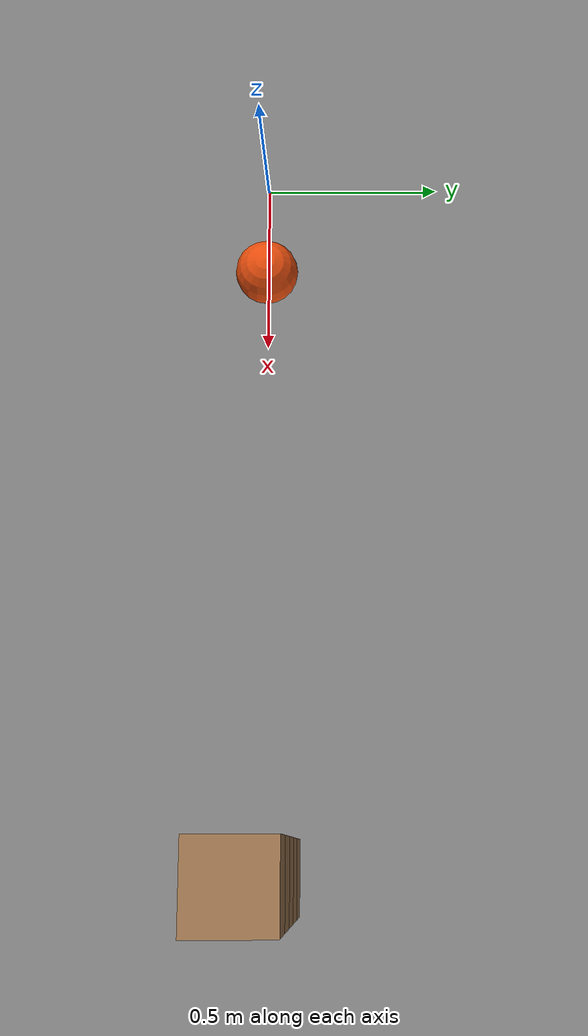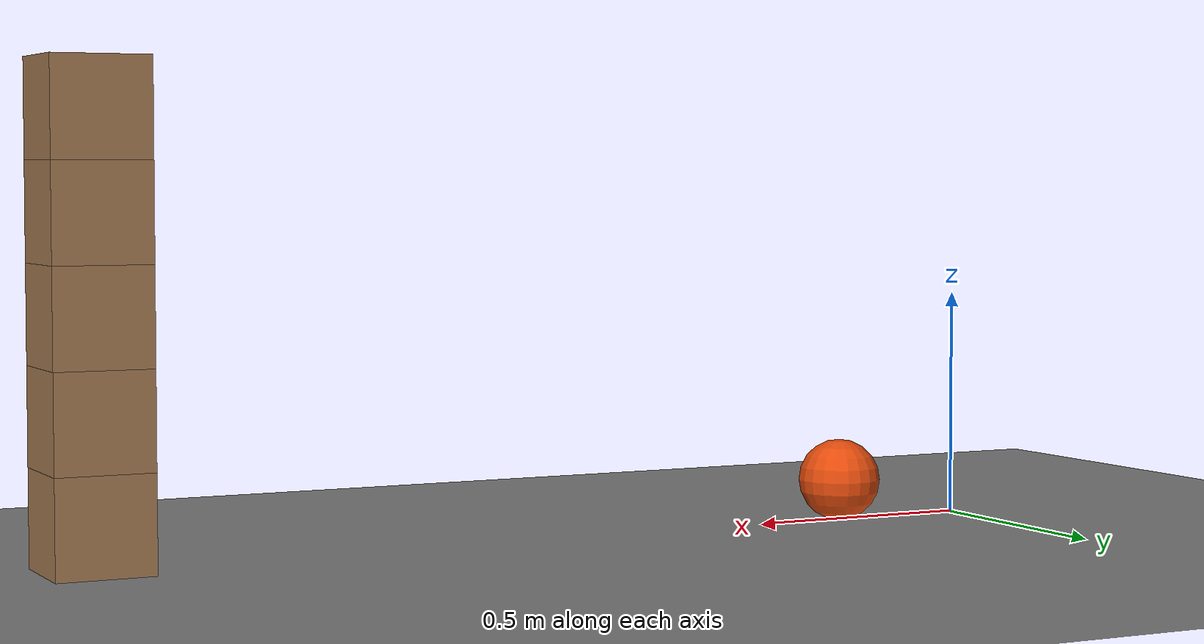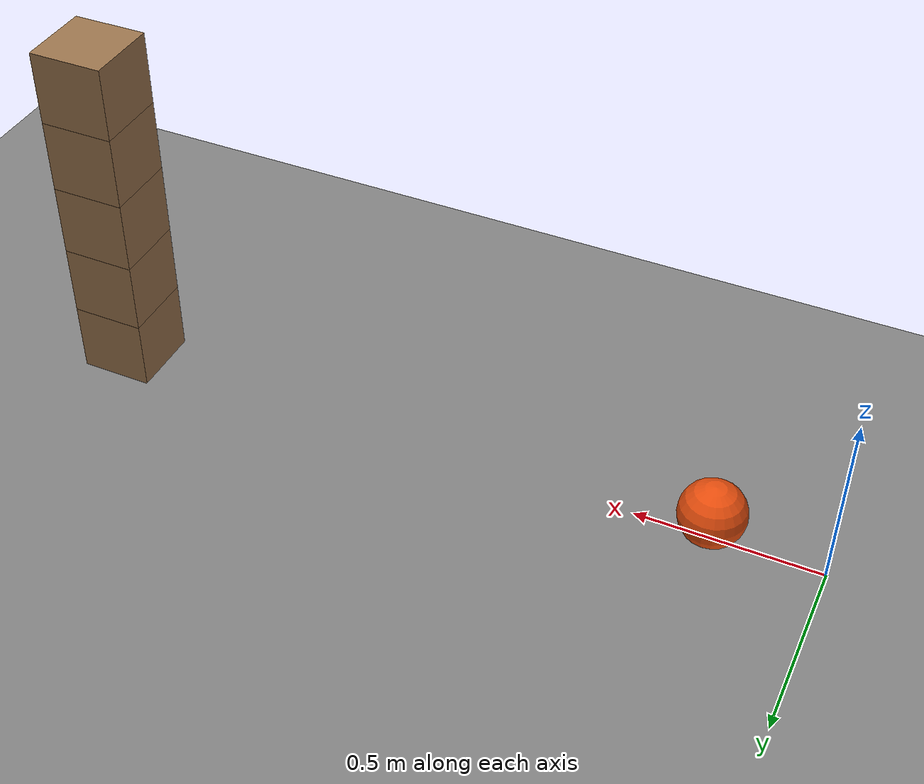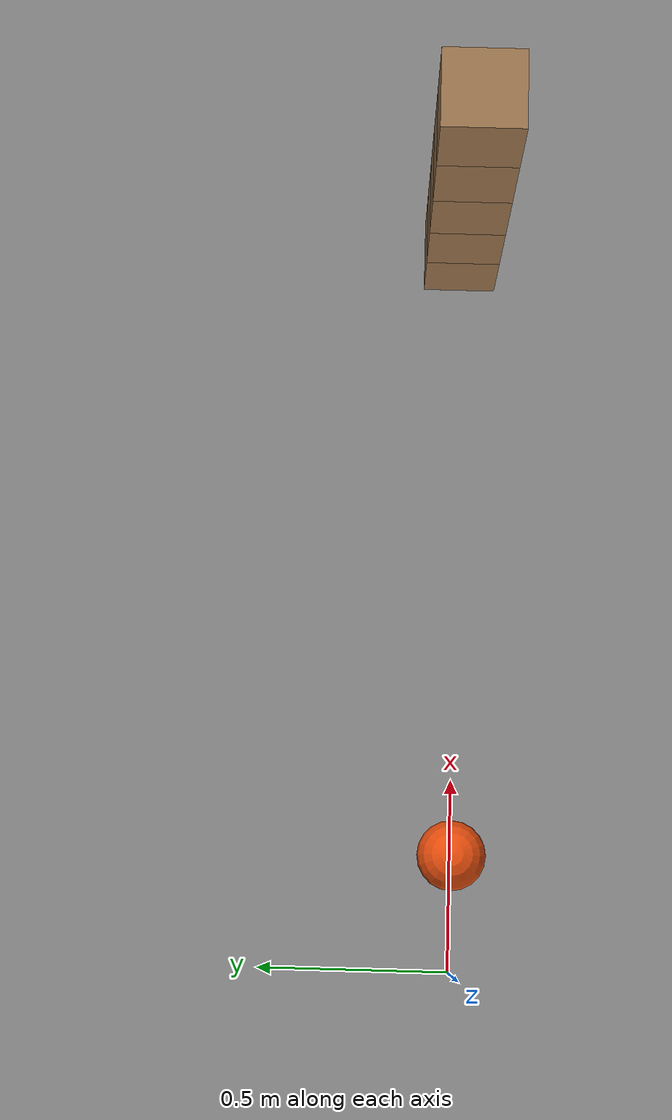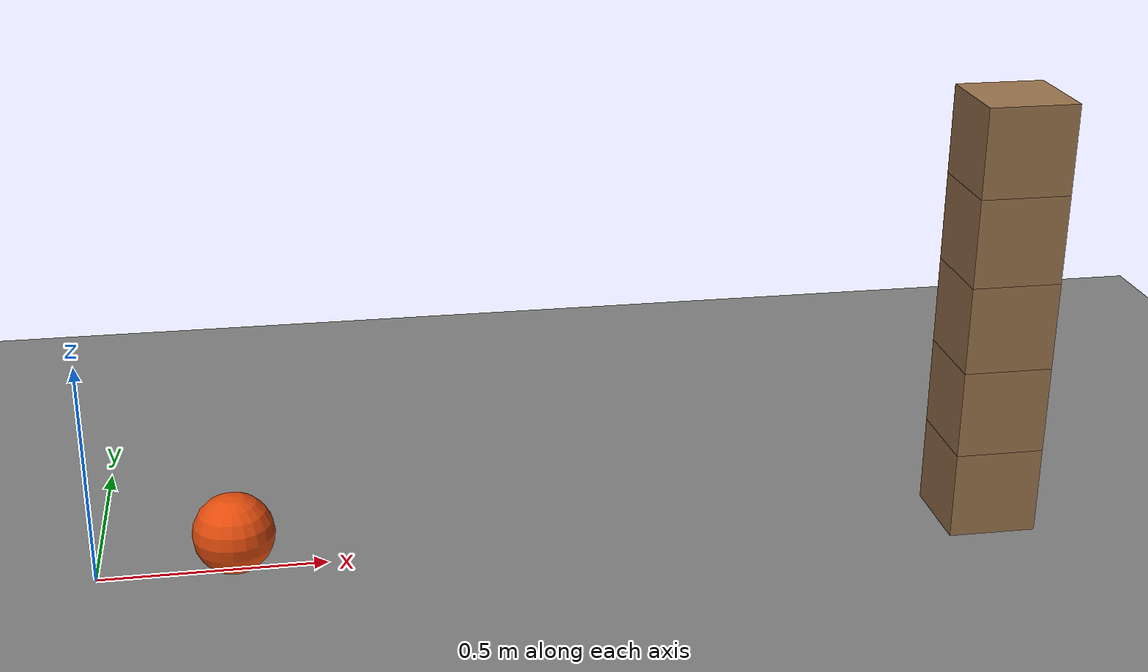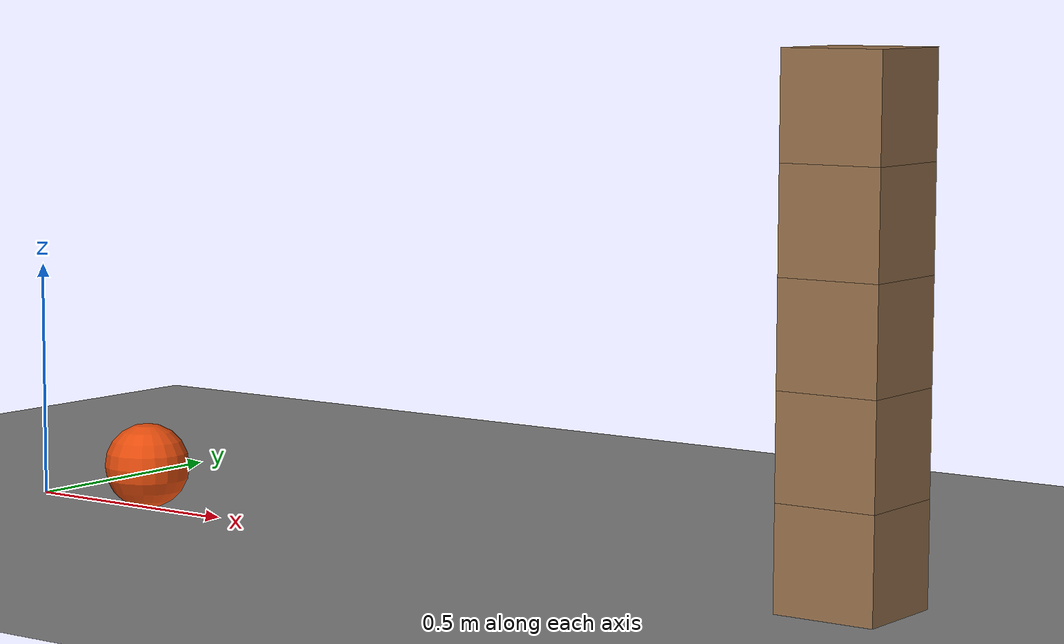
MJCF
<mujoco model="five_blocks_toppled_by_a_rolling_pusher">
  <compiler angle="radian"/>
  <option timestep="0.002"/>
  <worldbody>
    <geom name="floor" type="plane" size="10 10 0.1" friction="0.7 0.005 0.002"/>
    <body name="block1" pos="2 0 0.1">
      <freejoint/>
      <geom name="block1" type="box" pos="0 0 0" size="0.1 0.1 0.1" mass="0.5" friction="0.7 0.005 0.002" solref="0.01 1" rgba="0.6 0.45 0.3 1"/>
    </body>
    <body name="block2" pos="2 0 0.3">
      <freejoint/>
      <geom name="block2" type="box" pos="0 0 0" size="0.1 0.1 0.1" mass="0.5" friction="0.7 0.005 0.002" solref="0.01 1" rgba="0.6 0.45 0.3 1"/>
    </body>
    <body name="block3" pos="2 0 0.5">
      <freejoint/>
      <geom name="block3" type="box" pos="0 0 0" size="0.1 0.1 0.1" mass="0.5" friction="0.7 0.005 0.002" solref="0.01 1" rgba="0.6 0.45 0.3 1"/>
    </body>
    <body name="block4" pos="2 0 0.7">
      <freejoint/>
      <geom name="block4" type="box" pos="0 0 0" size="0.1 0.1 0.1" mass="0.5" friction="0.7 0.005 0.002" solref="0.01 1" rgba="0.6 0.45 0.3 1"/>
    </body>
    <body name="block5" pos="2 0 0.9">
      <freejoint/>
      <geom name="block5" type="box" pos="0 0 0" size="0.1 0.1 0.1" mass="0.5" friction="0.7 0.005 0.002" solref="0.01 1" rgba="0.6 0.45 0.3 1"/>
    </body>
    <body name="pusher" pos="0.3 0 0.09">
      <freejoint/>
      <geom name="pusher" type="sphere" pos="0 0 0" size="0.09" mass="4" condim="6" friction="0.7 0.005 0.002" solref="0.01 1" rgba="0.9 0.3 0.05 1"/>
    </body>
  </worldbody>
  <keyframe>
    <key name="start" qpos="2 0 0.1 1 0 0 0 2 0 0.3 1 0 0 0 2 0 0.5 1 0 0 0 2 0 0.7 1 0 0 0 2 0 0.9 1 0 0 0 0.3 0 0.09 1 0 0 0" qvel="0 0 0 0 0 0 0 0 0 0 0 0 0 0 0 0 0 0 0 0 0 0 0 0 0 0 0 0 0 0 3 0 0 0 33.333 0"/>
  </keyframe>
</mujoco>
